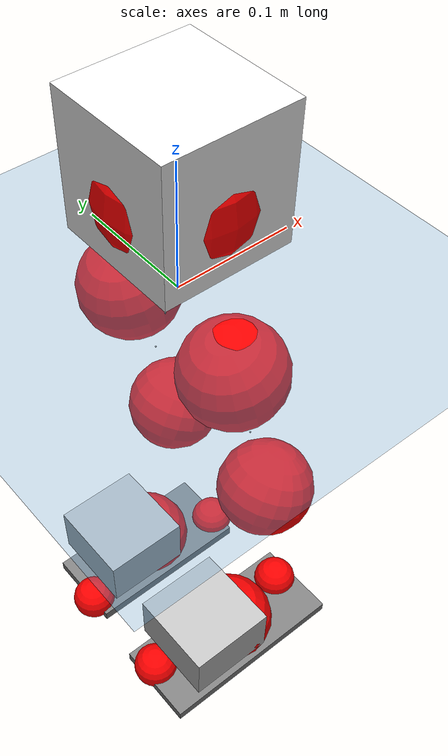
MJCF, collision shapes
<mujoco model="pi_12dof_release_v1">
  <compiler angle="radian" assetdir="assets" balanceinertia="true" inertiafromgeom="false"/>

  <option timestep="0.005" density="1.2" viscosity="2e-05"/>

  <size nkey="1"/>

  <visual>
    <quality shadowsize="8192"/>
    <map shadowclip="0.5"/>
  </visual>

  <default>
    <default class="/">
      <joint armature="0.01" damping="0.01" frictionloss="0.01"/>
      <geom contype="0" conaffinity="0" group="1" solref="-1000 -80"/>
      <site size="0.01 0.005 0.005" group="5"/>
      <general forcelimited="true" biastype="affine" gainprm="20" biasprm="0 -20 -0.5"/>
      <default class="foot">
        <geom size="0.0845 0.036 0.005" type="box" condim="6" group="4" priority="1" friction="0.9 0.2 0.2" solimp="0.015 1 0.005"/>
      </default>
      <default class="reward_collision_sphere">
        <geom group="5" rgba="1 0 0 1"/>
      </default>
    </default>
  </default>

  <asset>
    <texture type="skybox" colorspace="auto" name="//unnamed_texture_0" builtin="gradient" rgb1="0.95 0.95 0.95" rgb2="0.95 0.95 0.95" width="100" height="600"/>
    <texture type="2d" colorspace="auto" name="texplane" builtin="checker" rgb1="0.345 0.575 0.748" rgb2="0.345 0.575 0.748" markrgb="1 1 1" width="512" height="512"/>
    <material name="MatPlane" class="/" texture="texplane" texuniform="true" texrepeat="2 2" specular="0.9"/>
    <mesh name="baselink_1" class="/" file="baselink_1.STL"/>
    <mesh name="r_hip_pitch_link" class="/" file="r_hip_pitch_link.STL"/>
    <mesh name="r_hip_roll_link" class="/" file="r_hip_roll_link.STL"/>
    <mesh name="r_thigh_link" class="/" file="r_thigh_link.STL"/>
    <mesh name="r_calf_link" class="/" file="r_calf_link.STL"/>
    <mesh name="r_ankle_pitch_link" class="/" file="r_ankle_pitch_link.STL"/>
    <mesh name="r_ankle_roll_link" class="/" file="r_ankle_roll_link.STL"/>
    <mesh name="l_hip_pitch_link" class="/" file="l_hip_pitch_link.STL"/>
    <mesh name="l_hip_roll_link" class="/" file="l_hip_roll_link.STL"/>
    <mesh name="l_thigh_link" class="/" file="l_thigh_link.STL"/>
    <mesh name="l_calf_link" class="/" file="l_calf_link.STL"/>
    <mesh name="l_ankle_pitch_link" class="/" file="l_ankle_pitch_link.STL"/>
    <mesh name="l_ankle_roll_link" class="/" file="l_ankle_roll_link.STL"/>
  </asset>

  <worldbody>
    <geom name="floor" class="/" size="100 100 0.125" type="plane" group="0" material="MatPlane"/>
    <light name="toplight_shadow" class="/" pos="0 0 5" dir="0.0990148 0.0990148 -0.990148" type="directional" ambient="0.04 0.04 0.04" diffuse="0.55 0.55 0.55" specular="0.12 0.12 0.12"/>
    <light name="toplight_fill" class="/" pos="0 0 5" dir="0.0990148 0.0990148 -0.990148" type="directional" castshadow="false" ambient="0.04 0.04 0.04" diffuse="0.3 0.3 0.3" specular="0.08 0.08 0.08"/>
    <body name="trunk" pos="-7.64081e-05 -0.00140287 0.000948132" quat="1 -0.000566304 0.000345712 0.000271918">
      <inertial pos="0.00201262 -0.00308059 0.0501944" quat="0.693455 0.0105315 0.0108228 0.720341" mass="2.25413" diaginertia="0.0166092 0.0017963 0.0101948"/>
      <joint name="//unnamed_joint_0" type="free"/>
      <geom name="//unnamed_geom_1" class="/" type="mesh" density="0" rgba="1 1 1 1" mesh="baselink_1"/>
      <geom name="//unnamed_geom_2" class="/" size="0.0509008 0.0509008 0.0509008" pos="0 0 0.0958427" type="box" rgba="1 1 1 1"/>
      <geom name="//unnamed_geom_3" class="reward_collision_sphere" size="0.0559909" pos="0 0 0.0838624"/>
      <site name="imu" class="/" pos="-0.000221975 0.0025905 0.00259698" size="0.0101802"/>
      <camera name="track" class="/" pos="0 -1.45816 0" quat="0.707107 0.707107 0 0" mode="trackcom"/>
      <camera name="ego_camera" class="/" pos="0.0845199 0 0.215646" quat="-0.5 -0.5 0.5 0.5"/>
      <body name="r_hip_pitch_link" pos="-0.000690882 -0.0168358 -0.0398119" quat="0.992186 -0.000105051 -0.124767 3.51821e-05">
        <inertial pos="0.00099351 -0.0434757 0.000418944" quat="-0.0142271 0.697559 -0.0270635 0.715875" mass="0.387417" diaginertia="0.000193758 1.99595e-05 0.000201087"/>
        <joint name="r_hip_pitch_joint" class="/" pos="0 0 0" axis="0.000248044 -1 0.000246824" range="-1.7245 1.26155" armature="0.00999211" damping="0.0264282" frictionloss="0.0115269"/>
        <geom name="//unnamed_geom_4" class="/" type="mesh" density="0" rgba="0.75294 0.75294 0.75294 1" mesh="r_hip_pitch_link"/>
        <geom name="//unnamed_geom_5" class="/" size="0.000509008 0.000509008 0.000509008" type="box" rgba="0.75294 0.75294 0.75294 1"/>
        <body name="r_hip_roll_link" pos="0.00229838 -0.0393387 -0.000115643" quat="0.999999 -0.00111384 -0.000672857 -0.000306726">
          <inertial pos="-0.00243488 0.00196521 -0.0716424" quat="0.705516 -0.0789988 -0.0803775 0.699675" mass="0.410978" diaginertia="0.000586737 5.90499e-05 0.000316634"/>
          <joint name="r_hip_roll_joint" class="/" pos="0 0 0" axis="-0.999999 -0.00160268 6.15799e-05" stiffness="0.00175744" range="-0.119278 0.49207" armature="0.0113181" damping="0.0211562" frictionloss="0.0101382"/>
          <geom name="//unnamed_geom_6" class="/" type="mesh" density="0" rgba="0.75294 0.75294 0.75294 1" mesh="r_hip_roll_link"/>
          <geom name="//unnamed_geom_7" class="/" size="0.000509008 0.000509008 0.000509008" type="box" rgba="0.75294 0.75294 0.75294 1"/>
          <geom name="//unnamed_geom_8" class="reward_collision_sphere" size="0.0407206"/>
          <body name="r_thigh_link" pos="0.000431575 0.000606574 -0.0825609" quat="1 0.000142469 -0.000207183 -4.32428e-05">
            <inertial pos="-0.00199672 -0.000497387 -0.0591662" quat="0.736176 0.676783 -0.0017911 0.0026445" mass="0.116022" diaginertia="0.000224316 1.98511e-05 0.00014081"/>
            <joint name="r_thigh_joint" class="/" pos="0 0 0" axis="0.0092356 0.00278613 -0.999953" range="-0.354965 0.540473" armature="0.011424" damping="0" frictionloss="0.0115392"/>
            <geom name="//unnamed_geom_9" class="/" type="mesh" density="0" rgba="0.75294 0.75294 0.75294 1" mesh="r_thigh_link"/>
            <geom name="//unnamed_geom_10" class="/" size="0.000509008 0.000509008 0.000509008" type="box" rgba="0.75294 0.75294 0.75294 1"/>
            <body name="r_calf_link" pos="-0.00242395 -0.00328056 -0.0845088" quat="0.947523 -0.000226699 0.319688 9.02856e-05">
              <inertial pos="0.000811345 -0.00119268 -0.0832764" quat="0.999836 -0.00578725 0.00411261 0.016667" mass="0.867129" diaginertia="0.0062845 0.000720384 0.000427796"/>
              <joint name="r_calf_joint" class="/" pos="0 0 0" axis="-0.00643249 -0.999898 -0.0127561" range="-1.65861 0.663165" armature="0.0102664" damping="0.00818345" frictionloss="0.0115046"/>
              <geom name="//unnamed_geom_11" class="/" type="mesh" density="0" rgba="0.75294 0.75294 0.75294 1" mesh="r_calf_link"/>
              <geom name="//unnamed_geom_12" class="/" size="0.000509008 0.000509008 0.000509008" type="box" rgba="0.75294 0.75294 0.75294 1"/>
              <geom name="//unnamed_geom_13" class="reward_collision_sphere" size="0.0407206"/>
              <body name="r_ankle_pitch_link" pos="0.00071918 -0.00200221 -0.170061" quat="0.98007 1.01009e-05 -0.198655 -4.60161e-05">
                <inertial pos="0.00563175 0.00154267 0.00234509" quat="0.00203211 0.708032 -0.00562642 0.706155" mass="0.182912" diaginertia="0.000548317 4.5593e-05 0.000295019"/>
                <joint name="r_ankle_pitch_joint" class="/" pos="0 0 0" axis="-0.00632993 -0.999977 0.00233145" range="-1.32667 0.448545" armature="0.0112768" damping="0.0111479" frictionloss="0.0114681"/>
                <geom name="//unnamed_geom_14" class="/" type="mesh" density="0" rgba="0.75294 0.75294 0.75294 1" mesh="r_ankle_pitch_link"/>
                <geom name="//unnamed_geom_15" class="/" size="0.0397026 0.0407206 0.0254504" type="box" rgba="0.75294 0.75294 0.75294 1"/>
                <body name="r_ankle_roll_link" pos="0.0874255 -0.000521632 0.00256044" quat="1 -0.000141699 -0.000376712 0.000183482">
                  <inertial pos="-0.0280661 0.0014359 -0.0171699" quat="0.561161 0.430387 0.433157 0.558784" mass="0.564878" diaginertia="0.00213979 0.000224057 0.000713657"/>
                  <joint name="r_ankle_roll_joint" class="/" pos="0 0 0" axis="-0.999928 0.00883885 -0.00807966" stiffness="0.00652544" range="-0.0974121 0.195011" armature="0.0100408" damping="0.0153477" frictionloss="0.00970733"/>
                  <geom name="//unnamed_geom_16" class="/" type="mesh" density="0" rgba="0.75294 0.75294 0.75294 1" mesh="r_ankle_roll_link"/>
                  <geom name="//unnamed_geom_17" class="/" type="mesh" rgba="0.75294 0.75294 0.75294 1" mesh="r_ankle_roll_link"/>
                  <geom name="right_foot" class="foot" size="0.0907952 0.0391726 0.00504613" pos="-0.0574735 0 -0.0527135"/>
                  <geom name="//unnamed_geom_19" class="reward_collision_sphere" size="0.0407206" pos="-0.0563466 0 -0.0239607"/>
                  <geom name="//unnamed_geom_20" class="reward_collision_sphere" size="0.0203603" pos="0.016904 0.0145816 -0.0479214"/>
                  <geom name="//unnamed_geom_21" class="reward_collision_sphere" size="0.0203603" pos="-0.135232 0.0145816 -0.0479214"/>
                  <site name="right_foot" class="foot" pos="-0.0574735 0 -0.0527135" size="0.0101802"/>
                </body>
              </body>
            </body>
          </body>
        </body>
      </body>
      <body name="l_hip_pitch_link" pos="0.000518989 0.0173536 -0.0368336" quat="0.992163 0.000304325 -0.124951 0.000216616">
        <inertial pos="-6.78881e-05 0.0403877 0.000948397" quat="-0.0428104 0.704297 0.0322485 0.707879" mass="0.400137" diaginertia="0.000237517 2.17373e-05 0.000252446"/>
        <joint name="l_hip_pitch_joint" class="/" pos="0 0 0" axis="-0.00308963 0.999993 0.00206084" stiffness="0.00797989" range="-1.25398 1.80226" armature="0.00977571" damping="0.0145473" frictionloss="0.010299"/>
        <geom name="//unnamed_geom_22" class="/" type="mesh" density="0" rgba="0.75294 0.75294 0.75294 1" mesh="l_hip_pitch_link"/>
        <geom name="//unnamed_geom_23" class="/" size="0.000509008 0.000509008 0.000509008" type="box" rgba="0.75294 0.75294 0.75294 1"/>
        <body name="l_hip_roll_link" pos="-0.0011996 0.040623 -0.00102744" quat="0.999999 0.000219739 -0.00125953 0.000328911">
          <inertial pos="-0.00361925 0.00255342 -0.0737429" quat="0.697124 -0.0834152 -0.0830853 0.707218" mass="0.395785" diaginertia="0.000600692 5.76432e-05 0.000326817"/>
          <joint name="l_hip_roll_joint" class="/" pos="0 0 0" axis="-0.999984 0.00223308 0.00524425" range="-0.506849 0.1028" armature="0.0115158" damping="0.0087983" frictionloss="0.00985141"/>
          <geom name="//unnamed_geom_24" class="/" type="mesh" density="0" rgba="0.75294 0.75294 0.75294 1" mesh="l_hip_roll_link"/>
          <geom name="//unnamed_geom_25" class="/" size="0.000509008 0.000509008 0.000509008" type="box" rgba="0.75294 0.75294 0.75294 1"/>
          <geom name="//unnamed_geom_26" class="reward_collision_sphere" size="0.0407206"/>
          <body name="l_thigh_link" pos="0.000825518 0.00011807 -0.0814521" quat="1 -0.000145003 -0.00019336 -3.48672e-05">
            <inertial pos="0.000668153 0.000800871 -0.0559784" quat="0.675888 0.737001 5.6987e-06 0.00215508" mass="0.119295" diaginertia="0.000220365 1.88933e-05 0.000138054"/>
            <joint name="l_thigh_joint" class="/" pos="0 0 0" axis="0.00254731 -5.99278e-05 -0.999997" range="-0.617182 0.28166" armature="0.00983686" damping="0" frictionloss="0.00973598"/>
            <geom name="//unnamed_geom_27" class="/" type="mesh" density="0" rgba="0.75294 0.75294 0.75294 1" mesh="l_thigh_link"/>
            <geom name="//unnamed_geom_28" class="/" size="0.000509008 0.000509008 0.000509008" type="box" rgba="0.75294 0.75294 0.75294 1"/>
            <body name="l_calf_link" pos="-0.00286844 0.000697432 -0.0855976" quat="0.948066 -7.72927e-05 0.318075 -1.53539e-05">
              <inertial pos="0.000473656 0.00315708 -0.0821145" quat="0.999982 0.00295296 0.000466471 0.005218" mass="0.85384" diaginertia="0.00637035 0.000710082 0.000443387"/>
              <joint name="l_calf_joint" class="/" pos="0 0 0" axis="0.00303671 0.999995 -0.000376546" range="-0.602225 1.66788" armature="0.0102305" damping="0.00704951" frictionloss="0.00965589"/>
              <geom name="//unnamed_geom_29" class="/" type="mesh" density="0" rgba="0.75294 0.75294 0.75294 1" mesh="l_calf_link"/>
              <geom name="//unnamed_geom_30" class="/" size="0.000509008 0.000509008 0.000509008" type="box" rgba="0.75294 0.75294 0.75294 1"/>
              <geom name="//unnamed_geom_31" class="reward_collision_sphere" size="0.0407206"/>
              <body name="l_ankle_pitch_link" pos="-0.00134598 0.00307359 -0.166996" quat="0.980091 0.000236273 -0.198547 1.77621e-05">
                <inertial pos="0.00505507 -0.00268989 0.000761693" quat="-0.00218456 0.707306 -0.000682621 0.706904" mass="0.180932" diaginertia="0.000552402 4.56622e-05 0.00028701"/>
                <joint name="l_ankle_pitch_joint" class="/" pos="0 0 0" axis="-0.000314143 0.999999 0.00129212" stiffness="0.0104378" range="-0.486995 1.29705" armature="0.00897031" damping="0.020729" frictionloss="0.00962998"/>
                <geom name="//unnamed_geom_32" class="/" type="mesh" density="0" rgba="0.75294 0.75294 0.75294 1" mesh="l_ankle_pitch_link"/>
                <geom name="//unnamed_geom_33" class="/" size="0.0397026 0.0407206 0.0254504" type="box" rgba="0.75294 0.75294 0.75294 1"/>
                <body name="l_ankle_roll_link" pos="0.0858782 0.000479245 9.64516e-05" quat="1 -1.99743e-05 -1.20152e-05 -8.53779e-05">
                  <inertial pos="-0.0285093 -0.000409357 -0.0181747" quat="0.559598 0.429929 0.434301 0.559816" mass="0.558288" diaginertia="0.00203619 0.000213459 0.000700145"/>
                  <joint name="l_ankle_roll_joint" class="/" pos="0 0 0" axis="-0.999999 0.000107755 0.00161737" range="-0.0998877 0.147799" armature="0.0104837" damping="0" frictionloss="0.0105201"/>
                  <geom name="//unnamed_geom_34" class="/" type="mesh" density="0" rgba="0.75294 0.75294 0.75294 1" mesh="l_ankle_roll_link"/>
                  <geom name="//unnamed_geom_35" class="/" type="mesh" rgba="0.75294 0.75294 0.75294 1" mesh="l_ankle_roll_link"/>
                  <geom name="left_foot" class="foot" size="0.0801752 0.0378605 0.00512884" pos="-0.0574735 0 -0.0527135"/>
                  <geom name="//unnamed_geom_37" class="reward_collision_sphere" size="0.0407206" pos="-0.0563466 0 -0.0239607"/>
                  <geom name="//unnamed_geom_38" class="reward_collision_sphere" size="0.0203603" pos="0.016904 -0.0145816 -0.0479214"/>
                  <geom name="//unnamed_geom_39" class="reward_collision_sphere" size="0.0203603" pos="-0.135232 -0.0145816 -0.0479214"/>
                  <site name="left_foot" class="foot" pos="-0.0574735 0 -0.0527135" size="0.0101802"/>
                </body>
              </body>
            </body>
          </body>
        </body>
      </body>
    </body>
  </worldbody>

  <contact>
    <pair class="/" geom1="floor" geom2="right_foot" name="//unnamed_contact_1"/>
    <pair class="/" geom1="floor" geom2="left_foot" name="//unnamed_contact_0"/>
  </contact>

  <actuator>
    <general name="r_hip_pitch_joint" class="/" joint="r_hip_pitch_joint" forcerange="-21.7135 21.7135" gainprm="20.3888" biasprm="0 -20.3888 -0.506599"/>
    <general name="r_hip_roll_joint" class="/" joint="r_hip_roll_joint" forcerange="-23.5397 23.5397" gainprm="20.3888" biasprm="0 -20.3888 -0.506599"/>
    <general name="r_thigh_joint" class="/" joint="r_thigh_joint" forcerange="-21.4793 21.4793" gainprm="20.3888" biasprm="0 -20.3888 -0.506599"/>
    <general name="r_calf_joint" class="/" joint="r_calf_joint" forcerange="-21.6841 21.6841" gainprm="20.3888" biasprm="0 -20.3888 -0.506599"/>
    <general name="r_ankle_pitch_joint" class="/" joint="r_ankle_pitch_joint" forcerange="-21.4075 21.4075" gainprm="20.3888" biasprm="0 -20.3888 -0.506599"/>
    <general name="r_ankle_roll_joint" class="/" joint="r_ankle_roll_joint" forcerange="-22.922 22.922" gainprm="20.3888" biasprm="0 -20.3888 -0.506599"/>
    <general name="l_hip_pitch_joint" class="/" joint="l_hip_pitch_joint" forcerange="-21.4546 21.4546" gainprm="20.3888" biasprm="0 -20.3888 -0.506599"/>
    <general name="l_hip_roll_joint" class="/" joint="l_hip_roll_joint" forcerange="-21.6384 21.6384" gainprm="20.3888" biasprm="0 -20.3888 -0.506599"/>
    <general name="l_thigh_joint" class="/" joint="l_thigh_joint" forcerange="-21.8082 21.8082" gainprm="20.3888" biasprm="0 -20.3888 -0.506599"/>
    <general name="l_calf_joint" class="/" joint="l_calf_joint" forcerange="-21.1412 21.1412" gainprm="20.3888" biasprm="0 -20.3888 -0.506599"/>
    <general name="l_ankle_pitch_joint" class="/" joint="l_ankle_pitch_joint" forcerange="-20.9247 20.9247" gainprm="20.3888" biasprm="0 -20.3888 -0.506599"/>
    <general name="l_ankle_roll_joint" class="/" joint="l_ankle_roll_joint" forcerange="-19.8944 19.8944" gainprm="20.3888" biasprm="0 -20.3888 -0.506599"/>
  </actuator>

  <sensor>
    <gyro site="imu" name="imu_angular_velocity"/>
    <velocimeter site="imu" name="imu_linear_velocity"/>
    <framelinvel objtype="site" objname="left_foot" name="left_foot_global_linear_velocity"/>
    <framelinvel objtype="site" objname="right_foot" name="right_foot_global_linear_velocity"/>
  </sensor>

  <keyframe>
    <key name="home" qpos="0 0 0.291 1 0 0 0 0.4 0 0 -0.8 0.4 0 -0.4 0 0 0.8 -0.4 0"/>
  </keyframe>
</mujoco>
